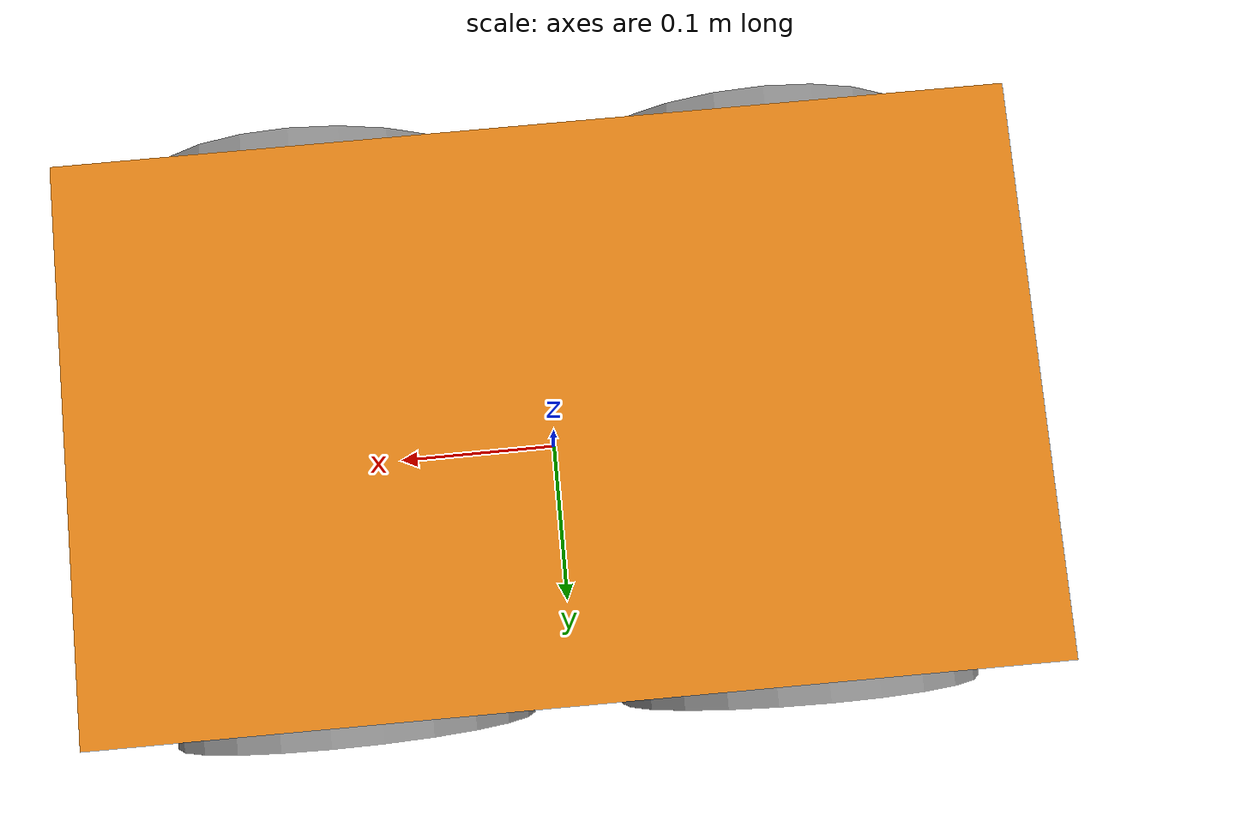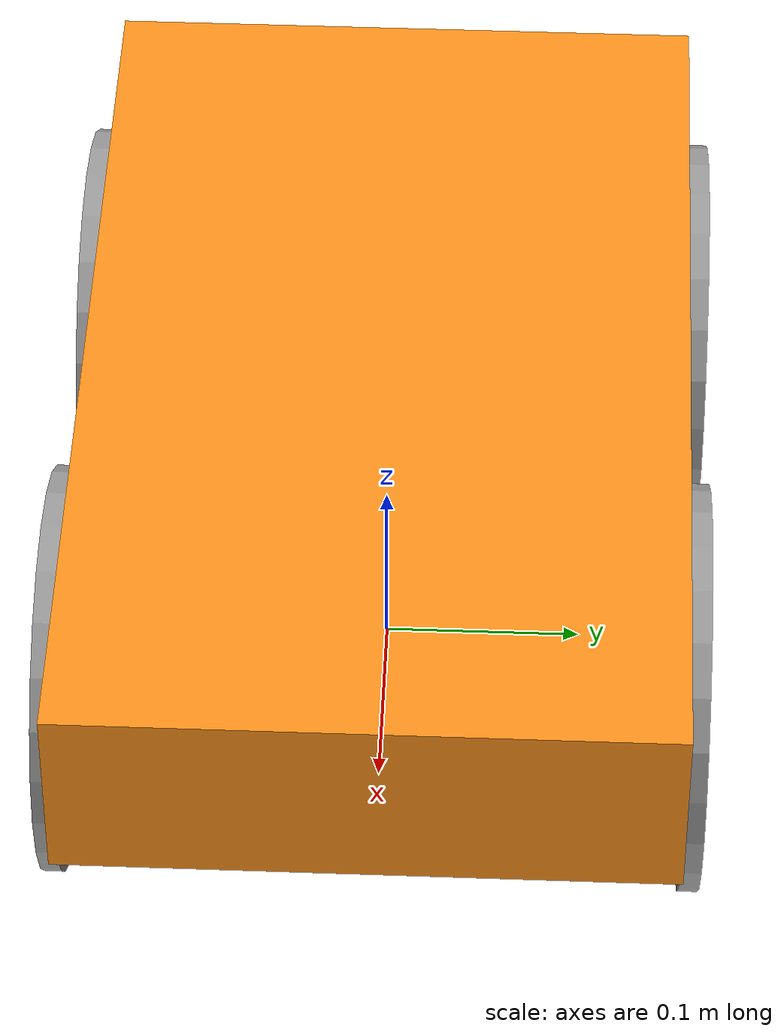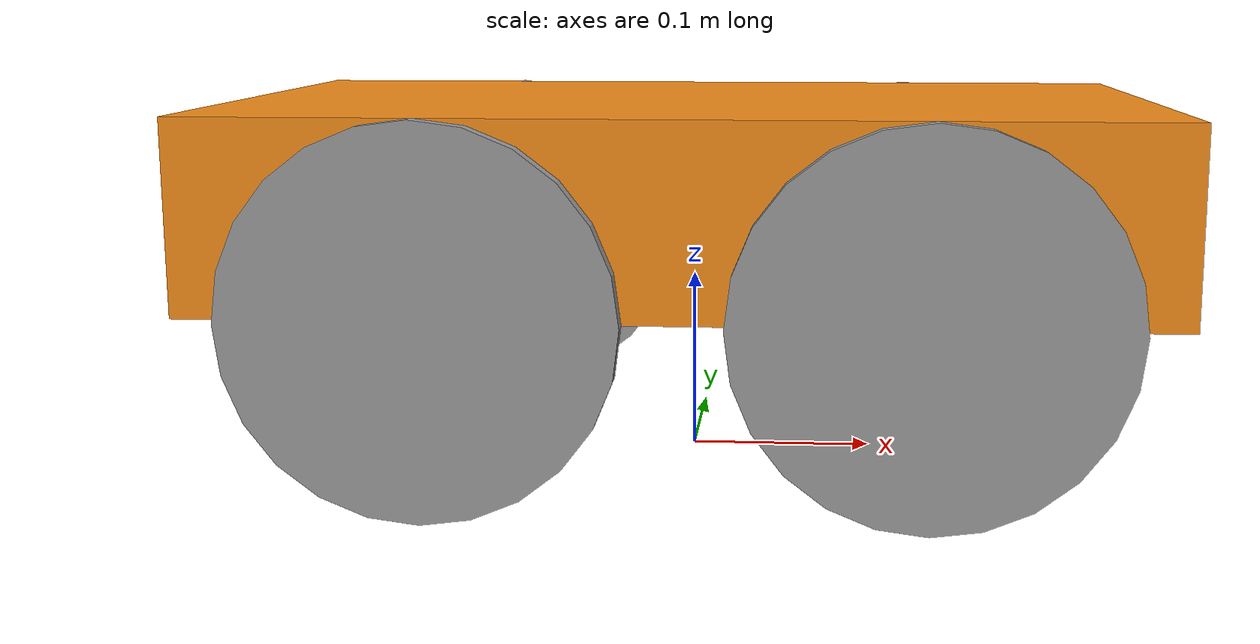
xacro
<?xml version="1.0"?>

<robot  xmlns:xacro="http://www.ros.org/wiki/xacro">

   <xacro:property name="base_length" value="0.5" />
    <xacro:property name="base_width" value="0.3" />
    <xacro:property name="base_height" value="0.1" />
    <xacro:property name="wheel_radius" value="0.1" />
    <xacro:property name="wheel_length" value="0.01" />

    <link name="base_footprint"></link>

    <link name="base_link">
        <visual>
            <geometry>
                <box size="${base_length} ${base_width} ${base_height}" />
            </geometry>
            <origin xyz="0 0 ${base_height/2.0}" rpy="0 0 0" />
            <material name="orange" />
        </visual>
        <xacro:box_inertia m="5.0" x="${base_length}" y="${base_width}" z="${base_height}"  o_xyz="0 0 ${base_height/2.0}" o_rpy="0 0 0" />
        <collision>
            <geometry>
                <box size="${base_length} ${base_width} ${base_height}" />
            </geometry>
            <origin xyz="0 0 ${base_height/2.0}" rpy="0 0 0" />
        </collision>
    </link>

    <xacro:macro name="wheel_link" params="wheel_name">
        <link name="${wheel_name}">
            <visual>
                <geometry>
                    <cylinder length="${wheel_length}" radius="${wheel_radius}" />
                </geometry>
                <origin xyz="0 0 0" rpy="0 0 0" />
                <material name="grey" />
            </visual>
            <xacro:solid_cylinder_inertia m="1.0" r="${wheel_radius}" h="${wheel_length}" o_xyz="0 0 0" o_rpy="0 0 0" />
            <collision>
                <geometry>
                    <cylinder length="${wheel_length}" radius="${wheel_radius}" />
                </geometry>
                <origin xyz="0 0 0" rpy="0 0 0" />
            </collision>
        </link>
    </xacro:macro>

    <xacro:wheel_link wheel_name="right_wheel_back"  />
    <xacro:wheel_link wheel_name="left_wheel_back" />

    <xacro:wheel_link wheel_name="right_wheel_front"  />
    <xacro:wheel_link wheel_name="left_wheel_front" />

    <joint name="base_footprint_base" type="fixed">
        <parent link="base_footprint" />
        <child link="base_link" />
        <origin xyz="0 0 ${wheel_radius}" rpy="0 0 0" />
    </joint>

    <joint name="base_right_wheel_back_joint" type="continuous">
        <parent link="base_link" />
        <child link="right_wheel_back" />
        <origin xyz="${-base_length/4.0} ${-((base_width/2.0) + wheel_length/2.0)} 0" rpy="${pi/2.0} 0 0" />
        <axis xyz="0 0 1" />
        <limit  effort="100" velocity="100" />
    </joint>

    <joint name="base_left_wheel_back_joint" type="continuous">
        <parent link="base_link" />
        <child link="left_wheel_back" />
        <origin xyz="${-base_length/4.0} ${((base_width/2.0) + wheel_length/2.0)} 0" rpy="${pi/2.0} 0 0" />
        <axis xyz="0 0 1" />
        <limit  effort="100" velocity="100" />
    </joint>

    <joint name="base_right_wheel_front_joint" type="continuous">
        <parent link="base_link" />
        <child link="right_wheel_front" />
        <origin xyz="${base_length/4.0} ${-((base_width/2.0) + wheel_length/2.0)} 0" rpy="${pi/2.0} 0 0" />
        <axis xyz="0 0 1" />
        <limit  effort="100" velocity="100" />
    </joint>

    <joint name="base_left_wheel_front_joint" type="continuous">
        <parent link="base_link" />
        <child link="left_wheel_front" />
        <origin xyz="${base_length/4.0} ${((base_width/2.0) + wheel_length/2.0)} 0" rpy="${pi/2.0} 0 0" />
        <axis xyz="0 0 1" />
        <limit  effort="100" velocity="100" />
    </joint>

</robot>
